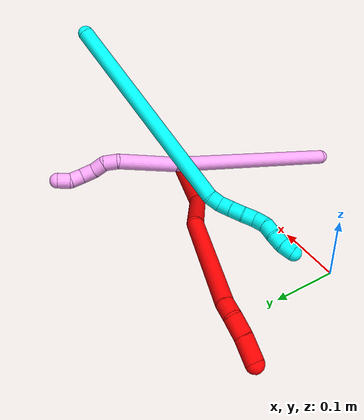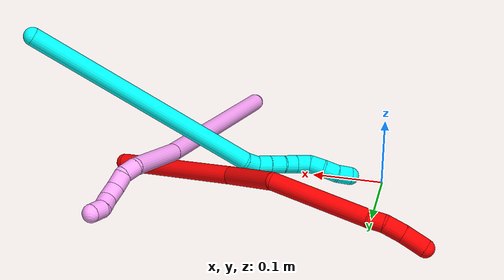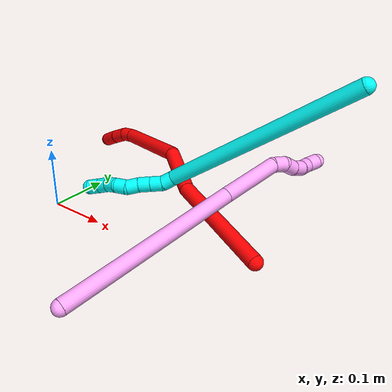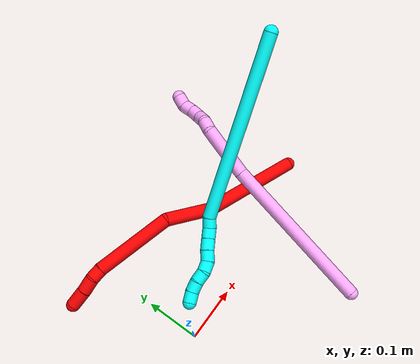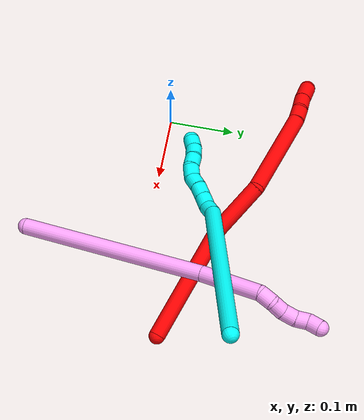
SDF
<sdf version="1.7">
 <world name="default">
  <model name="2">
   <static>0</static>
   <link name="2">
    <collision name="collision-cylinder-e_1_1_4">
     <pose>-0.05397 -0.010744 -0.075276 2.99982 -0.617257 -2.70331</pose>
     <geometry><cylinder><radius>0.0125</radius><length>0.18649</length></cylinder></geometry>
     <surface>
      <friction><ode><mu>1.16</mu><mu2>1.16</mu2><slip1>0</slip1><slip2>0</slip2></ode></friction>
      <contact><ode><kp>1e+06</kp><kd>1</kd><max_vel>0</max_vel><min_depth>0.001</min_depth></ode></contact>
     </surface>
    </collision>
    <visual name="visual-cylinder-e_1_1_4">
     <pose>-0.05397 -0.010744 -0.075276 2.99982 -0.617257 -2.70331</pose>
     <geometry><cylinder><radius>0.0125</radius><length>0.18649</length></cylinder></geometry>
     <material><ambient>1 0 0 1</ambient></material>
    </visual>
    <collision name="collision-cylinder-e_2_4_5">
     <pose>-0.142356 -0.026135 -0.177672 2.97191 -0.896346 -2.79144</pose>
     <geometry><cylinder><radius>0.0125</radius><length>0.088125</length></cylinder></geometry>
     <surface>
      <friction><ode><mu>1.16</mu><mu2>1.16</mu2><slip1>0</slip1><slip2>0</slip2></ode></friction>
      <contact><ode><kp>1e+06</kp><kd>1</kd><max_vel>0</max_vel><min_depth>0.001</min_depth></ode></contact>
     </surface>
    </collision>
    <visual name="visual-cylinder-e_2_4_5">
     <pose>-0.142356 -0.026135 -0.177672 2.97191 -0.896346 -2.79144</pose>
     <geometry><cylinder><radius>0.0125</radius><length>0.088125</length></cylinder></geometry>
     <material><ambient>1 0 0 1</ambient></material>
    </visual>
    <collision name="collision-cylinder-e_3_5_6">
     <pose>-0.207135 -0.022208 -0.268636 -3.00811 -0.440484 2.5613</pose>
     <geometry><cylinder><radius>0.0125</radius><length>0.142429</length></cylinder></geometry>
     <surface>
      <friction><ode><mu>1.16</mu><mu2>1.16</mu2><slip1>0</slip1><slip2>0</slip2></ode></friction>
      <contact><ode><kp>1e+06</kp><kd>1</kd><max_vel>0</max_vel><min_depth>0.001</min_depth></ode></contact>
     </surface>
    </collision>
    <visual name="visual-cylinder-e_3_5_6">
     <pose>-0.207135 -0.022208 -0.268636 -3.00811 -0.440484 2.5613</pose>
     <geometry><cylinder><radius>0.0125</radius><length>0.142429</length></cylinder></geometry>
     <material><ambient>1 0 0 1</ambient></material>
    </visual>
    <collision name="collision-cylinder-e_4_6_7">
     <pose>-0.240299 -0.012901 -0.342713 -3.06994 -0.266404 2.61884</pose>
     <geometry><cylinder><radius>0.0125</radius><length>0.021269</length></cylinder></geometry>
     <surface>
      <friction><ode><mu>1.16</mu><mu2>1.16</mu2><slip1>0</slip1><slip2>0</slip2></ode></friction>
      <contact><ode><kp>1e+06</kp><kd>1</kd><max_vel>0</max_vel><min_depth>0.001</min_depth></ode></contact>
     </surface>
    </collision>
    <visual name="visual-cylinder-e_4_6_7">
     <pose>-0.240299 -0.012901 -0.342713 -3.06994 -0.266404 2.61884</pose>
     <geometry><cylinder><radius>0.0125</radius><length>0.021269</length></cylinder></geometry>
     <material><ambient>1 0 0 1</ambient></material>
    </visual>
    <collision name="collision-cylinder-e_5_7_8">
     <pose>-0.243841 -0.008233 -0.366135 -2.85176 -0.053873 0.365127</pose>
     <geometry><cylinder><radius>0.0125</radius><length>0.027567</length></cylinder></geometry>
     <surface>
      <friction><ode><mu>1.16</mu><mu2>1.16</mu2><slip1>0</slip1><slip2>0</slip2></ode></friction>
      <contact><ode><kp>1e+06</kp><kd>1</kd><max_vel>0</max_vel><min_depth>0.001</min_depth></ode></contact>
     </surface>
    </collision>
    <visual name="visual-cylinder-e_5_7_8">
     <pose>-0.243841 -0.008233 -0.366135 -2.85176 -0.053873 0.365127</pose>
     <geometry><cylinder><radius>0.0125</radius><length>0.027567</length></cylinder></geometry>
     <material><ambient>1 0 0 1</ambient></material>
    </visual>
    <collision name="collision-cylinder-e_6_8_2">
     <pose>-0.246553 0.001855 -0.395113 -2.76989 -0.115688 0.597538</pose>
     <geometry><cylinder><radius>0.0125</radius><length>0.034119</length></cylinder></geometry>
     <surface>
      <friction><ode><mu>1.16</mu><mu2>1.16</mu2><slip1>0</slip1><slip2>0</slip2></ode></friction>
      <contact><ode><kp>1e+06</kp><kd>1</kd><max_vel>0</max_vel><min_depth>0.001</min_depth></ode></contact>
     </surface>
    </collision>
    <visual name="visual-cylinder-e_6_8_2">
     <pose>-0.246553 0.001855 -0.395113 -2.76989 -0.115688 0.597538</pose>
     <geometry><cylinder><radius>0.0125</radius><length>0.034119</length></cylinder></geometry>
     <material><ambient>1 0 0 1</ambient></material>
    </visual>
    <collision name="collision-sphere-2">
     <pose>-0.248522 0.00801 -0.410902 0 -0 0</pose>
     <geometry><sphere><radius>0.0125</radius></sphere></geometry>
     <surface>
      <friction><ode><mu>1.16</mu><mu2>1.16</mu2><slip1>0</slip1><slip2>0</slip2></ode></friction>
      <contact><ode><kp>1e+06</kp><kd>1</kd><max_vel>0</max_vel><min_depth>0.001</min_depth></ode></contact>
     </surface>
    </collision>
    <visual name="visual-sphere-2">
     <pose>-0.248522 0.00801 -0.410902 0 -0 0</pose>
     <geometry><sphere><radius>0.0125</radius></sphere></geometry>
     <material><ambient>1 0 0 1</ambient></material>
    </visual>
    <collision name="collision-sphere-4">
     <pose>-0.107941 -0.021488 -0.150551 0 -0 0</pose>
     <geometry><sphere><radius>0.0125</radius></sphere></geometry>
     <surface>
      <friction><ode><mu>1.16</mu><mu2>1.16</mu2><slip1>0</slip1><slip2>0</slip2></ode></friction>
      <contact><ode><kp>1e+06</kp><kd>1</kd><max_vel>0</max_vel><min_depth>0.001</min_depth></ode></contact>
     </surface>
    </collision>
    <visual name="visual-sphere-4">
     <pose>-0.107941 -0.021488 -0.150551 0 -0 0</pose>
     <geometry><sphere><radius>0.0125</radius></sphere></geometry>
     <material><ambient>1 0 0 1</ambient></material>
    </visual>
    <collision name="collision-sphere-1">
     <geometry><sphere><radius>0.0125</radius></sphere></geometry>
     <surface>
      <friction><ode><mu>1.16</mu><mu2>1.16</mu2><slip1>0</slip1><slip2>0</slip2></ode></friction>
      <contact><ode><kp>1e+06</kp><kd>1</kd><max_vel>0</max_vel><min_depth>0.001</min_depth></ode></contact>
     </surface>
    </collision>
    <visual name="visual-sphere-1">
     <geometry><sphere><radius>0.0125</radius></sphere></geometry>
     <material><ambient>1 0 0 1</ambient></material>
    </visual>
    <collision name="collision-sphere-8">
     <pose>-0.244583 -0.004299 -0.379325 0 -0 0</pose>
     <geometry><sphere><radius>0.0125</radius></sphere></geometry>
     <surface>
      <friction><ode><mu>1.16</mu><mu2>1.16</mu2><slip1>0</slip1><slip2>0</slip2></ode></friction>
      <contact><ode><kp>1e+06</kp><kd>1</kd><max_vel>0</max_vel><min_depth>0.001</min_depth></ode></contact>
     </surface>
    </collision>
    <visual name="visual-sphere-8">
     <pose>-0.244583 -0.004299 -0.379325 0 -0 0</pose>
     <geometry><sphere><radius>0.0125</radius></sphere></geometry>
     <material><ambient>1 0 0 1</ambient></material>
    </visual>
    <collision name="collision-sphere-5">
     <pose>-0.176771 -0.030782 -0.204792 0 -0 0</pose>
     <geometry><sphere><radius>0.0125</radius></sphere></geometry>
     <surface>
      <friction><ode><mu>1.16</mu><mu2>1.16</mu2><slip1>0</slip1><slip2>0</slip2></ode></friction>
      <contact><ode><kp>1e+06</kp><kd>1</kd><max_vel>0</max_vel><min_depth>0.001</min_depth></ode></contact>
     </surface>
    </collision>
    <visual name="visual-sphere-5">
     <pose>-0.176771 -0.030782 -0.204792 0 -0 0</pose>
     <geometry><sphere><radius>0.0125</radius></sphere></geometry>
     <material><ambient>1 0 0 1</ambient></material>
    </visual>
    <collision name="collision-sphere-6">
     <pose>-0.2375 -0.013635 -0.33248 0 -0 0</pose>
     <geometry><sphere><radius>0.0125</radius></sphere></geometry>
     <surface>
      <friction><ode><mu>1.16</mu><mu2>1.16</mu2><slip1>0</slip1><slip2>0</slip2></ode></friction>
      <contact><ode><kp>1e+06</kp><kd>1</kd><max_vel>0</max_vel><min_depth>0.001</min_depth></ode></contact>
     </surface>
    </collision>
    <visual name="visual-sphere-6">
     <pose>-0.2375 -0.013635 -0.33248 0 -0 0</pose>
     <geometry><sphere><radius>0.0125</radius></sphere></geometry>
     <material><ambient>1 0 0 1</ambient></material>
    </visual>
    <collision name="collision-sphere-7">
     <pose>-0.243099 -0.012166 -0.352946 0 -0 0</pose>
     <geometry><sphere><radius>0.0125</radius></sphere></geometry>
     <surface>
      <friction><ode><mu>1.16</mu><mu2>1.16</mu2><slip1>0</slip1><slip2>0</slip2></ode></friction>
      <contact><ode><kp>1e+06</kp><kd>1</kd><max_vel>0</max_vel><min_depth>0.001</min_depth></ode></contact>
     </surface>
    </collision>
    <visual name="visual-sphere-7">
     <pose>-0.243099 -0.012166 -0.352946 0 -0 0</pose>
     <geometry><sphere><radius>0.0125</radius></sphere></geometry>
     <material><ambient>1 0 0 1</ambient></material>
    </visual>
    <inertial>
     <pose>-0.144715 -0.015816 -0.197641 0 -0 0</pose>
     <mass>0.5</mass>
     <inertia>
      <ixx>-0.000717</ixx>
      <ixy>0</ixy>
      <ixz>0</ixz>
      <iyy>0.000701</iyy>
      <iyz>0</iyz>
      <izz>0.000476</izz>
     </inertia>
    </inertial>
   </link>
   <pose>0.370626 0.050035 0.011492 -1.35443 0.442489 -1.31072</pose>
  </model>
  <model name="3">
   <static>0</static>
   <link name="3">
    <collision name="collision-cylinder-e_1_1_4">
     <pose>-0.031185 0.065363 -0.15321 -2.73835 -0.185074 0.852391</pose>
     <geometry><cylinder><radius>0.0125</radius><length>0.338928</length></cylinder></geometry>
     <surface>
      <friction><ode><mu>1.16</mu><mu2>1.16</mu2><slip1>0</slip1><slip2>0</slip2></ode></friction>
      <contact><ode><kp>1e+06</kp><kd>1</kd><max_vel>0</max_vel><min_depth>0.001</min_depth></ode></contact>
     </surface>
    </collision>
    <visual name="visual-cylinder-e_1_1_4">
     <pose>-0.031185 0.065363 -0.15321 -2.73835 -0.185074 0.852391</pose>
     <geometry><cylinder><radius>0.0125</radius><length>0.338928</length></cylinder></geometry>
     <material><ambient>0.003922 1 0.996078 1</ambient></material>
    </visual>
    <collision name="collision-cylinder-e_2_4_5">
     <pose>-0.060937 0.133857 -0.315808 -2.81961 0.143739 -0.834564</pose>
     <geometry><cylinder><radius>0.0125</radius><length>0.02</length></cylinder></geometry>
     <surface>
      <friction><ode><mu>1.16</mu><mu2>1.16</mu2><slip1>0</slip1><slip2>0</slip2></ode></friction>
      <contact><ode><kp>1e+06</kp><kd>1</kd><max_vel>0</max_vel><min_depth>0.001</min_depth></ode></contact>
     </surface>
    </collision>
    <visual name="visual-cylinder-e_2_4_5">
     <pose>-0.060937 0.133857 -0.315808 -2.81961 0.143739 -0.834564</pose>
     <geometry><cylinder><radius>0.0125</radius><length>0.02</length></cylinder></geometry>
     <material><ambient>0.003922 1 0.996078 1</ambient></material>
    </visual>
    <collision name="collision-cylinder-e_3_5_6">
     <pose>-0.059202 0.136248 -0.335167 3.06745 0.030203 0.773432</pose>
     <geometry><cylinder><radius>0.0125</radius><length>0.020004</length></cylinder></geometry>
     <surface>
      <friction><ode><mu>1.16</mu><mu2>1.16</mu2><slip1>0</slip1><slip2>0</slip2></ode></friction>
      <contact><ode><kp>1e+06</kp><kd>1</kd><max_vel>0</max_vel><min_depth>0.001</min_depth></ode></contact>
     </surface>
    </collision>
    <visual name="visual-cylinder-e_3_5_6">
     <pose>-0.059202 0.136248 -0.335167 3.06745 0.030203 0.773432</pose>
     <geometry><cylinder><radius>0.0125</radius><length>0.020004</length></cylinder></geometry>
     <material><ambient>0.003922 1 0.996078 1</ambient></material>
    </visual>
    <collision name="collision-cylinder-e_4_6_7">
     <pose>-0.058445 0.134765 -0.355413 3.06947 0.044137 1.09811</pose>
     <geometry><cylinder><radius>0.0125</radius><length>0.020627</length></cylinder></geometry>
     <surface>
      <friction><ode><mu>1.16</mu><mu2>1.16</mu2><slip1>0</slip1><slip2>0</slip2></ode></friction>
      <contact><ode><kp>1e+06</kp><kd>1</kd><max_vel>0</max_vel><min_depth>0.001</min_depth></ode></contact>
     </surface>
    </collision>
    <visual name="visual-cylinder-e_4_6_7">
     <pose>-0.058445 0.134765 -0.355413 3.06947 0.044137 1.09811</pose>
     <geometry><cylinder><radius>0.0125</radius><length>0.020627</length></cylinder></geometry>
     <material><ambient>0.003922 1 0.996078 1</ambient></material>
    </visual>
    <collision name="collision-cylinder-e_5_7_8">
     <pose>-0.056147 0.1342 -0.375664 -3.12379 0.182671 -2.94782</pose>
     <geometry><cylinder><radius>0.0125</radius><length>0.020289</length></cylinder></geometry>
     <surface>
      <friction><ode><mu>1.16</mu><mu2>1.16</mu2><slip1>0</slip1><slip2>0</slip2></ode></friction>
      <contact><ode><kp>1e+06</kp><kd>1</kd><max_vel>0</max_vel><min_depth>0.001</min_depth></ode></contact>
     </surface>
    </collision>
    <visual name="visual-cylinder-e_5_7_8">
     <pose>-0.056147 0.1342 -0.375664 -3.12379 0.182671 -2.94782</pose>
     <geometry><cylinder><radius>0.0125</radius><length>0.020289</length></cylinder></geometry>
     <material><ambient>0.003922 1 0.996078 1</ambient></material>
    </visual>
    <collision name="collision-cylinder-e_6_8_9">
     <pose>-0.056428 0.132442 -0.39525 2.94286 -0.213296 -1.64195</pose>
     <geometry><cylinder><radius>0.0125</radius><length>0.020065</length></cylinder></geometry>
     <surface>
      <friction><ode><mu>1.16</mu><mu2>1.16</mu2><slip1>0</slip1><slip2>0</slip2></ode></friction>
      <contact><ode><kp>1e+06</kp><kd>1</kd><max_vel>0</max_vel><min_depth>0.001</min_depth></ode></contact>
     </surface>
    </collision>
    <visual name="visual-cylinder-e_6_8_9">
     <pose>-0.056428 0.132442 -0.39525 2.94286 -0.213296 -1.64195</pose>
     <geometry><cylinder><radius>0.0125</radius><length>0.020065</length></cylinder></geometry>
     <material><ambient>0.003922 1 0.996078 1</ambient></material>
    </visual>
    <collision name="collision-cylinder-e_7_9_10">
     <pose>-0.063362 0.131051 -0.413659 -3.07976 -0.4996 2.90035</pose>
     <geometry><cylinder><radius>0.0125</radius><length>0.020082</length></cylinder></geometry>
     <surface>
      <friction><ode><mu>1.16</mu><mu2>1.16</mu2><slip1>0</slip1><slip2>0</slip2></ode></friction>
      <contact><ode><kp>1e+06</kp><kd>1</kd><max_vel>0</max_vel><min_depth>0.001</min_depth></ode></contact>
     </surface>
    </collision>
    <visual name="visual-cylinder-e_7_9_10">
     <pose>-0.063362 0.131051 -0.413659 -3.07976 -0.4996 2.90035</pose>
     <geometry><cylinder><radius>0.0125</radius><length>0.020082</length></cylinder></geometry>
     <material><ambient>0.003922 1 0.996078 1</ambient></material>
    </visual>
    <collision name="collision-cylinder-e_8_10_11">
     <pose>-0.071193 0.133381 -0.431822 -2.95319 -0.306774 2.04448</pose>
     <geometry><cylinder><radius>0.0125</radius><length>0.020003</length></cylinder></geometry>
     <surface>
      <friction><ode><mu>1.16</mu><mu2>1.16</mu2><slip1>0</slip1><slip2>0</slip2></ode></friction>
      <contact><ode><kp>1e+06</kp><kd>1</kd><max_vel>0</max_vel><min_depth>0.001</min_depth></ode></contact>
     </surface>
    </collision>
    <visual name="visual-cylinder-e_8_10_11">
     <pose>-0.071193 0.133381 -0.431822 -2.95319 -0.306774 2.04448</pose>
     <geometry><cylinder><radius>0.0125</radius><length>0.020003</length></cylinder></geometry>
     <material><ambient>0.003922 1 0.996078 1</ambient></material>
    </visual>
    <collision name="collision-cylinder-e_9_11_2">
     <pose>-0.075214 0.135802 -0.451119 -3.0778 -0.100206 2.00822</pose>
     <geometry><cylinder><radius>0.0125</radius><length>0.020001</length></cylinder></geometry>
     <surface>
      <friction><ode><mu>1.16</mu><mu2>1.16</mu2><slip1>0</slip1><slip2>0</slip2></ode></friction>
      <contact><ode><kp>1e+06</kp><kd>1</kd><max_vel>0</max_vel><min_depth>0.001</min_depth></ode></contact>
     </surface>
    </collision>
    <visual name="visual-cylinder-e_9_11_2">
     <pose>-0.075214 0.135802 -0.451119 -3.0778 -0.100206 2.00822</pose>
     <geometry><cylinder><radius>0.0125</radius><length>0.020001</length></cylinder></geometry>
     <material><ambient>0.003922 1 0.996078 1</ambient></material>
    </visual>
    <collision name="collision-sphere-2">
     <pose>-0.076214 0.136436 -0.461049 0 -0 0</pose>
     <geometry><sphere><radius>0.0125</radius></sphere></geometry>
     <surface>
      <friction><ode><mu>1.16</mu><mu2>1.16</mu2><slip1>0</slip1><slip2>0</slip2></ode></friction>
      <contact><ode><kp>1e+06</kp><kd>1</kd><max_vel>0</max_vel><min_depth>0.001</min_depth></ode></contact>
     </surface>
    </collision>
    <visual name="visual-sphere-2">
     <pose>-0.076214 0.136436 -0.461049 0 -0 0</pose>
     <geometry><sphere><radius>0.0125</radius></sphere></geometry>
     <material><ambient>0.003922 1 0.996078 1</ambient></material>
    </visual>
    <collision name="collision-sphere-11">
     <pose>-0.074213 0.135167 -0.441188 0 -0 0</pose>
     <geometry><sphere><radius>0.0125</radius></sphere></geometry>
     <surface>
      <friction><ode><mu>1.16</mu><mu2>1.16</mu2><slip1>0</slip1><slip2>0</slip2></ode></friction>
      <contact><ode><kp>1e+06</kp><kd>1</kd><max_vel>0</max_vel><min_depth>0.001</min_depth></ode></contact>
     </surface>
    </collision>
    <visual name="visual-sphere-11">
     <pose>-0.074213 0.135167 -0.441188 0 -0 0</pose>
     <geometry><sphere><radius>0.0125</radius></sphere></geometry>
     <material><ambient>0.003922 1 0.996078 1</ambient></material>
    </visual>
    <collision name="collision-sphere-10">
     <pose>-0.068173 0.131596 -0.422456 0 -0 0</pose>
     <geometry><sphere><radius>0.0125</radius></sphere></geometry>
     <surface>
      <friction><ode><mu>1.16</mu><mu2>1.16</mu2><slip1>0</slip1><slip2>0</slip2></ode></friction>
      <contact><ode><kp>1e+06</kp><kd>1</kd><max_vel>0</max_vel><min_depth>0.001</min_depth></ode></contact>
     </surface>
    </collision>
    <visual name="visual-sphere-10">
     <pose>-0.068173 0.131596 -0.422456 0 -0 0</pose>
     <geometry><sphere><radius>0.0125</radius></sphere></geometry>
     <material><ambient>0.003922 1 0.996078 1</ambient></material>
    </visual>
    <collision name="collision-sphere-9">
     <pose>-0.058552 0.130506 -0.404862 0 -0 0</pose>
     <geometry><sphere><radius>0.0125</radius></sphere></geometry>
     <surface>
      <friction><ode><mu>1.16</mu><mu2>1.16</mu2><slip1>0</slip1><slip2>0</slip2></ode></friction>
      <contact><ode><kp>1e+06</kp><kd>1</kd><max_vel>0</max_vel><min_depth>0.001</min_depth></ode></contact>
     </surface>
    </collision>
    <visual name="visual-sphere-9">
     <pose>-0.058552 0.130506 -0.404862 0 -0 0</pose>
     <geometry><sphere><radius>0.0125</radius></sphere></geometry>
     <material><ambient>0.003922 1 0.996078 1</ambient></material>
    </visual>
    <collision name="collision-sphere-4">
     <pose>-0.062369 0.130725 -0.30642 0 -0 0</pose>
     <geometry><sphere><radius>0.0125</radius></sphere></geometry>
     <surface>
      <friction><ode><mu>1.16</mu><mu2>1.16</mu2><slip1>0</slip1><slip2>0</slip2></ode></friction>
      <contact><ode><kp>1e+06</kp><kd>1</kd><max_vel>0</max_vel><min_depth>0.001</min_depth></ode></contact>
     </surface>
    </collision>
    <visual name="visual-sphere-4">
     <pose>-0.062369 0.130725 -0.30642 0 -0 0</pose>
     <geometry><sphere><radius>0.0125</radius></sphere></geometry>
     <material><ambient>0.003922 1 0.996078 1</ambient></material>
    </visual>
    <collision name="collision-sphere-1">
     <geometry><sphere><radius>0.0125</radius></sphere></geometry>
     <surface>
      <friction><ode><mu>1.16</mu><mu2>1.16</mu2><slip1>0</slip1><slip2>0</slip2></ode></friction>
      <contact><ode><kp>1e+06</kp><kd>1</kd><max_vel>0</max_vel><min_depth>0.001</min_depth></ode></contact>
     </surface>
    </collision>
    <visual name="visual-sphere-1">
     <geometry><sphere><radius>0.0125</radius></sphere></geometry>
     <material><ambient>0.003922 1 0.996078 1</ambient></material>
    </visual>
    <collision name="collision-sphere-8">
     <pose>-0.054304 0.134378 -0.385638 0 -0 0</pose>
     <geometry><sphere><radius>0.0125</radius></sphere></geometry>
     <surface>
      <friction><ode><mu>1.16</mu><mu2>1.16</mu2><slip1>0</slip1><slip2>0</slip2></ode></friction>
      <contact><ode><kp>1e+06</kp><kd>1</kd><max_vel>0</max_vel><min_depth>0.001</min_depth></ode></contact>
     </surface>
    </collision>
    <visual name="visual-sphere-8">
     <pose>-0.054304 0.134378 -0.385638 0 -0 0</pose>
     <geometry><sphere><radius>0.0125</radius></sphere></geometry>
     <material><ambient>0.003922 1 0.996078 1</ambient></material>
    </visual>
    <collision name="collision-sphere-5">
     <pose>-0.059504 0.136989 -0.325197 0 -0 0</pose>
     <geometry><sphere><radius>0.0125</radius></sphere></geometry>
     <surface>
      <friction><ode><mu>1.16</mu><mu2>1.16</mu2><slip1>0</slip1><slip2>0</slip2></ode></friction>
      <contact><ode><kp>1e+06</kp><kd>1</kd><max_vel>0</max_vel><min_depth>0.001</min_depth></ode></contact>
     </surface>
    </collision>
    <visual name="visual-sphere-5">
     <pose>-0.059504 0.136989 -0.325197 0 -0 0</pose>
     <geometry><sphere><radius>0.0125</radius></sphere></geometry>
     <material><ambient>0.003922 1 0.996078 1</ambient></material>
    </visual>
    <collision name="collision-sphere-6">
     <pose>-0.0589 0.135508 -0.345137 0 -0 0</pose>
     <geometry><sphere><radius>0.0125</radius></sphere></geometry>
     <surface>
      <friction><ode><mu>1.16</mu><mu2>1.16</mu2><slip1>0</slip1><slip2>0</slip2></ode></friction>
      <contact><ode><kp>1e+06</kp><kd>1</kd><max_vel>0</max_vel><min_depth>0.001</min_depth></ode></contact>
     </surface>
    </collision>
    <visual name="visual-sphere-6">
     <pose>-0.0589 0.135508 -0.345137 0 -0 0</pose>
     <geometry><sphere><radius>0.0125</radius></sphere></geometry>
     <material><ambient>0.003922 1 0.996078 1</ambient></material>
    </visual>
    <collision name="collision-sphere-7">
     <pose>-0.05799 0.134023 -0.36569 0 -0 0</pose>
     <geometry><sphere><radius>0.0125</radius></sphere></geometry>
     <surface>
      <friction><ode><mu>1.16</mu><mu2>1.16</mu2><slip1>0</slip1><slip2>0</slip2></ode></friction>
      <contact><ode><kp>1e+06</kp><kd>1</kd><max_vel>0</max_vel><min_depth>0.001</min_depth></ode></contact>
     </surface>
    </collision>
    <visual name="visual-sphere-7">
     <pose>-0.05799 0.134023 -0.36569 0 -0 0</pose>
     <geometry><sphere><radius>0.0125</radius></sphere></geometry>
     <material><ambient>0.003922 1 0.996078 1</ambient></material>
    </visual>
    <inertial>
     <pose>-0.0413 0.087464 -0.227599 0 -0 0</pose>
     <mass>0.5</mass>
     <inertia>
      <ixx>0.004513</ixx>
      <ixy>0</ixy>
      <ixz>0</ixz>
      <iyy>0.000631</iyy>
      <iyz>0</iyz>
      <izz>-0.000692</izz>
     </inertia>
    </inertial>
   </link>
   <pose>0.451257 0.169157 0.257063 -1.35956 0.027366 -1.07421</pose>
  </model>
  <model name="4">
   <static>0</static>
   <link name="4">
    <collision name="collision-cylinder-e_1_1_4">
     <pose>0.001895 0.085723 0.12031 -0.619081 0.012826 -0.004102</pose>
     <geometry><cylinder><radius>0.0125</radius><length>0.295476</length></cylinder></geometry>
     <surface>
      <friction><ode><mu>1.16</mu><mu2>1.16</mu2><slip1>0</slip1><slip2>0</slip2></ode></friction>
      <contact><ode><kp>1e+06</kp><kd>1</kd><max_vel>0</max_vel><min_depth>0.001</min_depth></ode></contact>
     </surface>
    </collision>
    <visual name="visual-cylinder-e_1_1_4">
     <pose>0.001895 0.085723 0.12031 -0.619081 0.012826 -0.004102</pose>
     <geometry><cylinder><radius>0.0125</radius><length>0.295476</length></cylinder></geometry>
     <material><ambient>1 0.65098 0.996078 1</ambient></material>
    </visual>
    <collision name="collision-cylinder-e_2_4_5">
     <pose>0.002048 0.203596 0.277763 -0.713443 -0.035445 0.01321</pose>
     <geometry><cylinder><radius>0.0125</radius><length>0.09831</length></cylinder></geometry>
     <surface>
      <friction><ode><mu>1.16</mu><mu2>1.16</mu2><slip1>0</slip1><slip2>0</slip2></ode></friction>
      <contact><ode><kp>1e+06</kp><kd>1</kd><max_vel>0</max_vel><min_depth>0.001</min_depth></ode></contact>
     </surface>
    </collision>
    <visual name="visual-cylinder-e_2_4_5">
     <pose>0.002048 0.203596 0.277763 -0.713443 -0.035445 0.01321</pose>
     <geometry><cylinder><radius>0.0125</radius><length>0.09831</length></cylinder></geometry>
     <material><ambient>1 0.65098 0.996078 1</ambient></material>
    </visual>
    <collision name="collision-cylinder-e_3_5_6">
     <pose>-0.004098 0.240508 0.32411 -0.477606 -0.401797 0.099073</pose>
     <geometry><cylinder><radius>0.0125</radius><length>0.02252</length></cylinder></geometry>
     <surface>
      <friction><ode><mu>1.16</mu><mu2>1.16</mu2><slip1>0</slip1><slip2>0</slip2></ode></friction>
      <contact><ode><kp>1e+06</kp><kd>1</kd><max_vel>0</max_vel><min_depth>0.001</min_depth></ode></contact>
     </surface>
    </collision>
    <visual name="visual-cylinder-e_3_5_6">
     <pose>-0.004098 0.240508 0.32411 -0.477606 -0.401797 0.099073</pose>
     <geometry><cylinder><radius>0.0125</radius><length>0.02252</length></cylinder></geometry>
     <material><ambient>1 0.65098 0.996078 1</ambient></material>
    </visual>
    <collision name="collision-cylinder-e_4_6_7">
     <pose>-0.013125 0.244763 0.342753 0.053845 -0.454929 -0.012466</pose>
     <geometry><cylinder><radius>0.0125</radius><length>0.021048</length></cylinder></geometry>
     <surface>
      <friction><ode><mu>1.16</mu><mu2>1.16</mu2><slip1>0</slip1><slip2>0</slip2></ode></friction>
      <contact><ode><kp>1e+06</kp><kd>1</kd><max_vel>0</max_vel><min_depth>0.001</min_depth></ode></contact>
     </surface>
    </collision>
    <visual name="visual-cylinder-e_4_6_7">
     <pose>-0.013125 0.244763 0.342753 0.053845 -0.454929 -0.012466</pose>
     <geometry><cylinder><radius>0.0125</radius><length>0.021048</length></cylinder></geometry>
     <material><ambient>1 0.65098 0.996078 1</ambient></material>
    </visual>
    <collision name="collision-cylinder-e_5_7_8">
     <pose>-0.020451 0.246325 0.362662 -0.195295 -0.247981 0.024416</pose>
     <geometry><cylinder><radius>0.0125</radius><length>0.022017</length></cylinder></geometry>
     <surface>
      <friction><ode><mu>1.16</mu><mu2>1.16</mu2><slip1>0</slip1><slip2>0</slip2></ode></friction>
      <contact><ode><kp>1e+06</kp><kd>1</kd><max_vel>0</max_vel><min_depth>0.001</min_depth></ode></contact>
     </surface>
    </collision>
    <visual name="visual-cylinder-e_5_7_8">
     <pose>-0.020451 0.246325 0.362662 -0.195295 -0.247981 0.024416</pose>
     <geometry><cylinder><radius>0.0125</radius><length>0.022017</length></cylinder></geometry>
     <material><ambient>1 0.65098 0.996078 1</ambient></material>
    </visual>
    <collision name="collision-cylinder-e_6_8_9">
     <pose>-0.022823 0.251236 0.382733 -0.287571 0.03301 -0.00478</pose>
     <geometry><cylinder><radius>0.0125</radius><length>0.020039</length></cylinder></geometry>
     <surface>
      <friction><ode><mu>1.16</mu><mu2>1.16</mu2><slip1>0</slip1><slip2>0</slip2></ode></friction>
      <contact><ode><kp>1e+06</kp><kd>1</kd><max_vel>0</max_vel><min_depth>0.001</min_depth></ode></contact>
     </surface>
    </collision>
    <visual name="visual-cylinder-e_6_8_9">
     <pose>-0.022823 0.251236 0.382733 -0.287571 0.03301 -0.00478</pose>
     <geometry><cylinder><radius>0.0125</radius><length>0.020039</length></cylinder></geometry>
     <material><ambient>1 0.65098 0.996078 1</ambient></material>
    </visual>
    <collision name="collision-cylinder-e_7_9_2">
     <pose>-0.024677 0.260364 0.40019 -0.675091 -0.213818 0.075297</pose>
     <geometry><cylinder><radius>0.0125</radius><length>0.020591</length></cylinder></geometry>
     <surface>
      <friction><ode><mu>1.16</mu><mu2>1.16</mu2><slip1>0</slip1><slip2>0</slip2></ode></friction>
      <contact><ode><kp>1e+06</kp><kd>1</kd><max_vel>0</max_vel><min_depth>0.001</min_depth></ode></contact>
     </surface>
    </collision>
    <visual name="visual-cylinder-e_7_9_2">
     <pose>-0.024677 0.260364 0.40019 -0.675091 -0.213818 0.075297</pose>
     <geometry><cylinder><radius>0.0125</radius><length>0.020591</length></cylinder></geometry>
     <material><ambient>1 0.65098 0.996078 1</ambient></material>
    </visual>
    <collision name="collision-sphere-2">
     <pose>-0.026861 0.266652 0.408044 0 -0 0</pose>
     <geometry><sphere><radius>0.0125</radius></sphere></geometry>
     <surface>
      <friction><ode><mu>1.16</mu><mu2>1.16</mu2><slip1>0</slip1><slip2>0</slip2></ode></friction>
      <contact><ode><kp>1e+06</kp><kd>1</kd><max_vel>0</max_vel><min_depth>0.001</min_depth></ode></contact>
     </surface>
    </collision>
    <visual name="visual-sphere-2">
     <pose>-0.026861 0.266652 0.408044 0 -0 0</pose>
     <geometry><sphere><radius>0.0125</radius></sphere></geometry>
     <material><ambient>1 0.65098 0.996078 1</ambient></material>
    </visual>
    <collision name="collision-sphere-9">
     <pose>-0.022492 0.254076 0.392336 0 -0 0</pose>
     <geometry><sphere><radius>0.0125</radius></sphere></geometry>
     <surface>
      <friction><ode><mu>1.16</mu><mu2>1.16</mu2><slip1>0</slip1><slip2>0</slip2></ode></friction>
      <contact><ode><kp>1e+06</kp><kd>1</kd><max_vel>0</max_vel><min_depth>0.001</min_depth></ode></contact>
     </surface>
    </collision>
    <visual name="visual-sphere-9">
     <pose>-0.022492 0.254076 0.392336 0 -0 0</pose>
     <geometry><sphere><radius>0.0125</radius></sphere></geometry>
     <material><ambient>1 0.65098 0.996078 1</ambient></material>
    </visual>
    <collision name="collision-sphere-4">
     <pose>0.00379 0.171447 0.24062 0 -0 0</pose>
     <geometry><sphere><radius>0.0125</radius></sphere></geometry>
     <surface>
      <friction><ode><mu>1.16</mu><mu2>1.16</mu2><slip1>0</slip1><slip2>0</slip2></ode></friction>
      <contact><ode><kp>1e+06</kp><kd>1</kd><max_vel>0</max_vel><min_depth>0.001</min_depth></ode></contact>
     </surface>
    </collision>
    <visual name="visual-sphere-4">
     <pose>0.00379 0.171447 0.24062 0 -0 0</pose>
     <geometry><sphere><radius>0.0125</radius></sphere></geometry>
     <material><ambient>1 0.65098 0.996078 1</ambient></material>
    </visual>
    <collision name="collision-sphere-1">
     <geometry><sphere><radius>0.0125</radius></sphere></geometry>
     <surface>
      <friction><ode><mu>1.16</mu><mu2>1.16</mu2><slip1>0</slip1><slip2>0</slip2></ode></friction>
      <contact><ode><kp>1e+06</kp><kd>1</kd><max_vel>0</max_vel><min_depth>0.001</min_depth></ode></contact>
     </surface>
    </collision>
    <visual name="visual-sphere-1">
     <geometry><sphere><radius>0.0125</radius></sphere></geometry>
     <material><ambient>1 0.65098 0.996078 1</ambient></material>
    </visual>
    <collision name="collision-sphere-8">
     <pose>-0.023153 0.248396 0.37313 0 -0 0</pose>
     <geometry><sphere><radius>0.0125</radius></sphere></geometry>
     <surface>
      <friction><ode><mu>1.16</mu><mu2>1.16</mu2><slip1>0</slip1><slip2>0</slip2></ode></friction>
      <contact><ode><kp>1e+06</kp><kd>1</kd><max_vel>0</max_vel><min_depth>0.001</min_depth></ode></contact>
     </surface>
    </collision>
    <visual name="visual-sphere-8">
     <pose>-0.023153 0.248396 0.37313 0 -0 0</pose>
     <geometry><sphere><radius>0.0125</radius></sphere></geometry>
     <material><ambient>1 0.65098 0.996078 1</ambient></material>
    </visual>
    <collision name="collision-sphere-5">
     <pose>0.000306 0.235745 0.314907 0 -0 0</pose>
     <geometry><sphere><radius>0.0125</radius></sphere></geometry>
     <surface>
      <friction><ode><mu>1.16</mu><mu2>1.16</mu2><slip1>0</slip1><slip2>0</slip2></ode></friction>
      <contact><ode><kp>1e+06</kp><kd>1</kd><max_vel>0</max_vel><min_depth>0.001</min_depth></ode></contact>
     </surface>
    </collision>
    <visual name="visual-sphere-5">
     <pose>0.000306 0.235745 0.314907 0 -0 0</pose>
     <geometry><sphere><radius>0.0125</radius></sphere></geometry>
     <material><ambient>1 0.65098 0.996078 1</ambient></material>
    </visual>
    <collision name="collision-sphere-6">
     <pose>-0.008501 0.245271 0.333313 0 -0 0</pose>
     <geometry><sphere><radius>0.0125</radius></sphere></geometry>
     <surface>
      <friction><ode><mu>1.16</mu><mu2>1.16</mu2><slip1>0</slip1><slip2>0</slip2></ode></friction>
      <contact><ode><kp>1e+06</kp><kd>1</kd><max_vel>0</max_vel><min_depth>0.001</min_depth></ode></contact>
     </surface>
    </collision>
    <visual name="visual-sphere-6">
     <pose>-0.008501 0.245271 0.333313 0 -0 0</pose>
     <geometry><sphere><radius>0.0125</radius></sphere></geometry>
     <material><ambient>1 0.65098 0.996078 1</ambient></material>
    </visual>
    <collision name="collision-sphere-7">
     <pose>-0.017749 0.244254 0.352193 0 -0 0</pose>
     <geometry><sphere><radius>0.0125</radius></sphere></geometry>
     <surface>
      <friction><ode><mu>1.16</mu><mu2>1.16</mu2><slip1>0</slip1><slip2>0</slip2></ode></friction>
      <contact><ode><kp>1e+06</kp><kd>1</kd><max_vel>0</max_vel><min_depth>0.001</min_depth></ode></contact>
     </surface>
    </collision>
    <visual name="visual-sphere-7">
     <pose>-0.017749 0.244254 0.352193 0 -0 0</pose>
     <geometry><sphere><radius>0.0125</radius></sphere></geometry>
     <material><ambient>1 0.65098 0.996078 1</ambient></material>
    </visual>
    <inertial>
     <pose>-0.002046 0.143463 0.202526 0 -0 0</pose>
     <mass>0.5</mass>
     <inertia>
      <ixx>0.002242</ixx>
      <ixy>0</ixy>
      <ixz>0</ixz>
      <iyy>0.001844</iyy>
      <iyz>0</iyz>
      <izz>-0.001302</izz>
     </inertia>
    </inertial>
   </link>
   <pose>0.228873 -0.183303 0.011498 1.97955 -0.475434 3.04112</pose>
  </model>
 </world>
</sdf>
